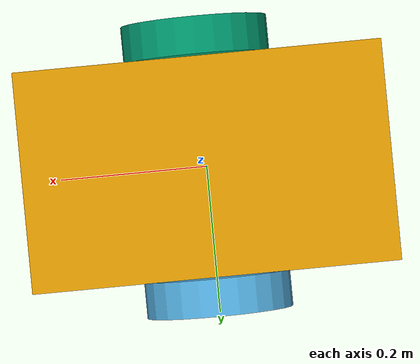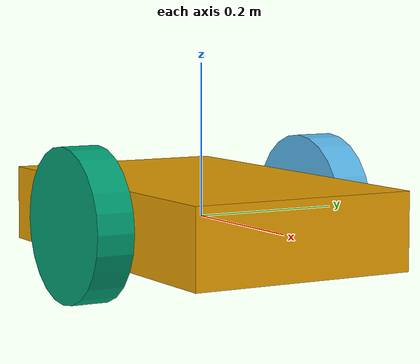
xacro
<?xml version="1.0"?>
<robot name="my_wheelchair" xmlns:xacro="http://www.ros.org/wiki/xacro">
  <link name="base_link">
    <visual>
      <geometry>
        <box size="0.5 0.3 0.1"/>
      </geometry>
    </visual>
  </link>

  <link name="left_wheel">
    <visual>
      <geometry>
        <cylinder length="0.05" radius="0.1"/>
      </geometry>
    </visual>
  </link>

  <link name="right_wheel">
    <visual>
      <geometry>
        <cylinder length="0.05" radius="0.1"/>
      </geometry>
    </visual>
  </link>

  <joint name="left_wheel_joint" type="continuous">
    <parent link="base_link"/>
    <child link="left_wheel"/>
    <origin xyz="0 0.175 0" rpy="-1.5708 0 0"/>
    <axis xyz="0 0 1"/>
  </joint>

  <joint name="right_wheel_joint" type="continuous">
    <parent link="base_link"/>
    <child link="right_wheel"/>
    <origin xyz="0 -0.175 0" rpy="-1.5708 0 0"/>
    <axis xyz="0 0 1"/>
  </joint>
</robot>
